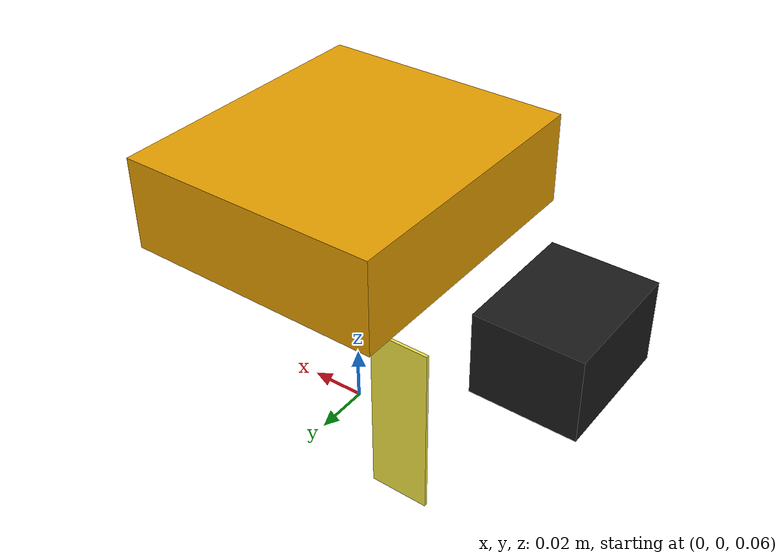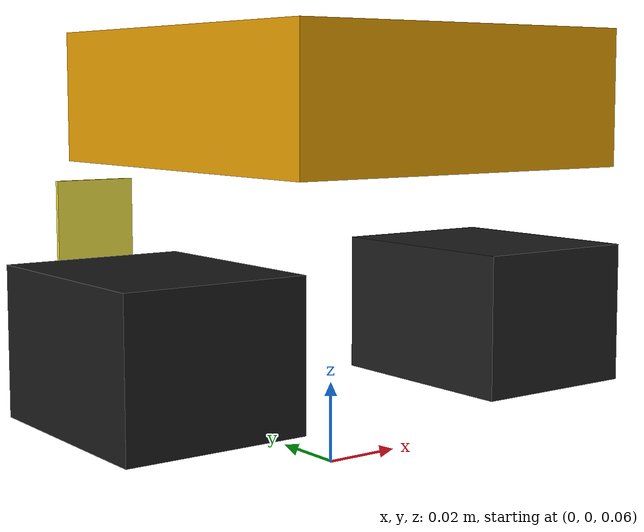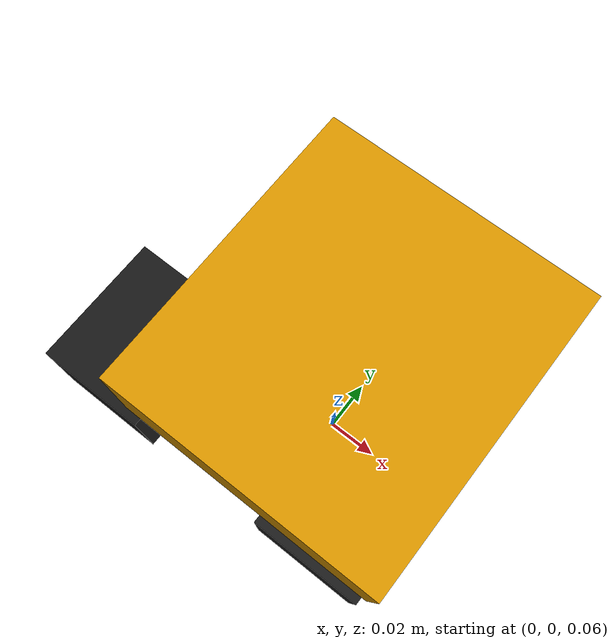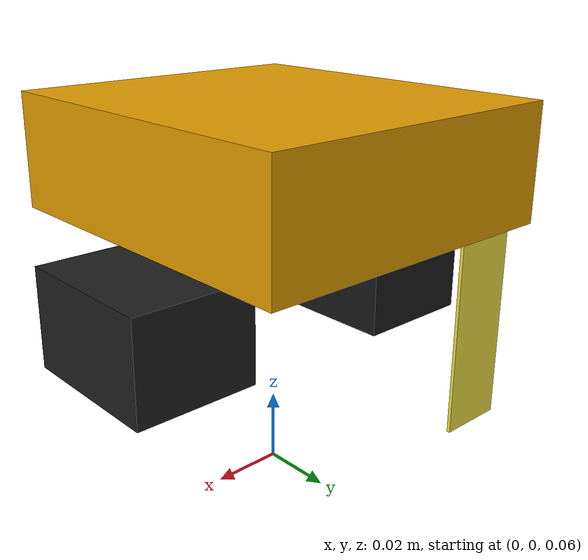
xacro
<?xml version="1.0" encoding="UTF-8"?>
<robot xmlns:xacro="http://www.ros.org/wiki/xacro" name="test_dynamixel_chain">
  <xacro:include filename="$(find dynamixel_description)/urdf/constants.xacro"/>
  <xacro:include filename="$(find dynamixel_description)/urdf/AX12.xacro"/>
  <link name="base_link">
    <visual>
        <geometry>
           <box size="0.09 0.1 0.032"/>
        </geometry>
      <origin rpy="0 0 0" xyz="0 0 0.150"/>
    </visual>
  </link>

 <xacro:dynamixel_AX12_up parent="base_link" number="1" x_loc="0.045" y_loc="-0.0135" z_loc="0.1" r="${-90*M_PI/180}" p="${90*M_PI/180}" y="0"/>

  <joint name="robotis_part" type="fixed">
      <origin xyz="-0.045 -0.0135 0.1" rpy="${-90*M_PI/180} ${90*M_PI/180} 0"/>
      <parent link="base_link"/>
      <child link="dynamixel_AX12_2_link"/>
    </joint>

  <xacro:dynamixel_AX12_down child="foot_link" number="2" x_loc="0" y_loc="0" z_loc="0.05" r="0" p="0" y="0"/>

   <link name="foot_link">
    <visual>
        <geometry>
           <box size="0.06 0.02 0.001"/>
        </geometry>
      <origin rpy="0 0 0" xyz="0 0 0"/>
    </visual>
  </link>

</robot>

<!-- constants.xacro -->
<robot xmlns:xacro="http://www.ros.org/wiki/xacro" name="constants">
  <xacro:property name="M_PI" value="3.14159"/>
  <xacro:property name="M_SCALE" value="0.001"/>
  <xacro:property name="F10_HEIGHT" value="0.004"/>
  <xacro:property name="F4_HEIGHT" value="0.0525"/>
  <xacro:property name="F3_HEIGHT" value="0.009"/>
  <xacro:property name="AX12_HEIGHT" value="0.0385"/>
  <xacro:property name="AX12_WIDTH" value="0.038"/>
  <xacro:property name="F2_HEIGHT" value="0.0265"/>
  <xacro:property name="MESH_EXT" value="dae"/>

 <xacro:property name="AX12_X_CENTER" value="0"/>
  <xacro:property name="AX12_Y_CENTER" value="0.020"/>
  <xacro:property name="AX12_Z_CENTER" value="-0.0135"/>
  <xacro:property name="AX12_X_SIZE" value="0.032"/>
  <xacro:property name="AX12_Y_SIZE" value="0.040"/>
  <xacro:property name="AX12_Z_SIZE" value="0.050"/>

  <xacro:property name="AX12_VELOCITY" value="0.5"/>
  <xacro:property name="AX12_EFFORT" value="1000"/>

  <xacro:property name="F1_X_SIZE" value="0.039"/>
  <xacro:property name="F1_Y_SIZE" value="0.048"/><!-- fingers front back-->
  <xacro:property name="F1_Z_SIZE" value="0.034"/> <!-- fingers up and back-->
   <!-- center of box to hole where joint from ax12 goes-->
  <xacro:property name="F1_X_CENTER" value="0.009"/>
  <xacro:property name="F1_Y_CENTER" value="0.021"/>
  <xacro:property name="F1_Z_CENTER" value="0.005"/>

  <xacro:property name="F2_X_SIZE" value="0.024"/>
  <xacro:property name="F2_Y_SIZE" value="0.048"/><!-- fingers front back-->
  <xacro:property name="F2_Z_SIZE" value="0.035"/> <!-- fingers up-->
   <!--from center of box to hole where joint from ax12 goes-->
  <xacro:property name="F2_X_CENTER" value="0.000"/>
  <xacro:property name="F2_Y_CENTER" value="0.021"/>
  <xacro:property name="F2_Z_CENTER" value="0.0045"/>

  <xacro:property name="F3_Z_SIZE" value="0.005"/>
  <xacro:property name="F7_Z_SIZE" value="0.005"/>
  <xacro:property name="F10_Z_SIZE" value="0.002"/>

  <xacro:property name="ACM5_X_SIZE" value="0.090"/>
  <xacro:property name="ACM5_Y_SIZE" value="0.100"/>
  <xacro:property name="ACM5_Z_SIZE" value="0.032"/>
</robot>

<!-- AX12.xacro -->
<robot xmlns:xacro="http://www.ros.org/wiki/xacro" name="dynamixel">
  <xacro:include filename="$(find dynamixel_description)/urdf/constants.xacro"/>
  <xacro:macro name="dynamixel_AX12_up" params="parent number x_loc y_loc z_loc r p y">
    <!---Kinematics for kdl tree and robot_state_publisher -->
    <joint name="dynamixel_AX12_${number}_joint" type="revolute">
      <!--origin of whole dynamixel is at the center of the round part visible on the servo which is the joint -->
      <origin xyz="${x_loc} ${y_loc} ${z_loc}" rpy="${r} ${p} ${y}"/>
      <!-- negative green is the joint axis... -->
      <axis xyz="0 -1 0"/>
      <limit effort="${AX12_EFFORT}" lower="${-150*M_PI/180}" upper="${150*M_PI/180}" velocity="${AX12_VELOCITY}"/>
      <parent link="${parent}"/>
      <child link="dynamixel_AX12_${number}_link"/>
    </joint>
    <link name="dynamixel_AX12_${number}_link">
      <!---rviz -->
      <visual>
        <!--link origin is a delta from the joint to the center of the servo box-->
        <origin xyz="0 ${AX12_Y_CENTER} ${AX12_Z_CENTER}" rpy="0 0 0"/>
        <geometry>
          <box size="${AX12_X_SIZE} ${AX12_Y_SIZE} ${AX12_Z_SIZE}"/>
        </geometry>
        <material name="black"/>
      </visual>
    </link>
  </xacro:macro>
  <xacro:macro name="dynamixel_AX12_down" params="child number x_loc y_loc z_loc r p y">
    <link name="dynamixel_AX12_${number}_link">
      <!---rviz -->
      <visual>
        <!--link origin is a delta from the joint to the center of the servo box-->
        <origin xyz="0 ${AX12_Y_CENTER} ${AX12_Z_CENTER}" rpy="0 0 0"/>
        <geometry>
          <box size="${AX12_X_SIZE} ${AX12_Y_SIZE} ${AX12_Z_SIZE}"/>
        </geometry>
        <material name="Gray">
          <color rgba="0.1 0.1 0.1 1.0"/>
        </material>
      </visual>
    </link>
    <!---Kinematics for kdl tree and robot_state_publisher -->
    <joint name="dynamixel_AX12_${number}_joint" type="revolute">
      <!--origin of whole dynamixel is at the center of the round part visible on the servo which is the joint -->
      <origin xyz="${x_loc} ${y_loc} ${z_loc}" rpy="${r} ${p} ${y}"/>
      <axis xyz="0 -1 0"/>
      <limit effort="${AX12_EFFORT}" lower="${-150*M_PI/180}" upper="${150*M_PI/180}" velocity="${AX12_VELOCITY}"/>
      <parent link="dynamixel_AX12_${number}_link"/>
      <child link="${child}"/>
    </joint>
  </xacro:macro>
</robot>
